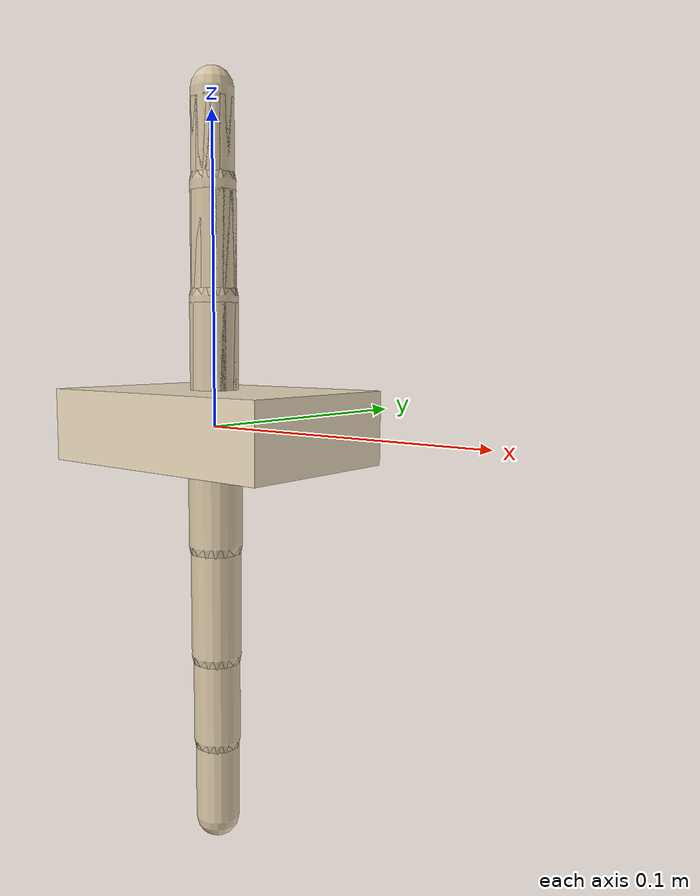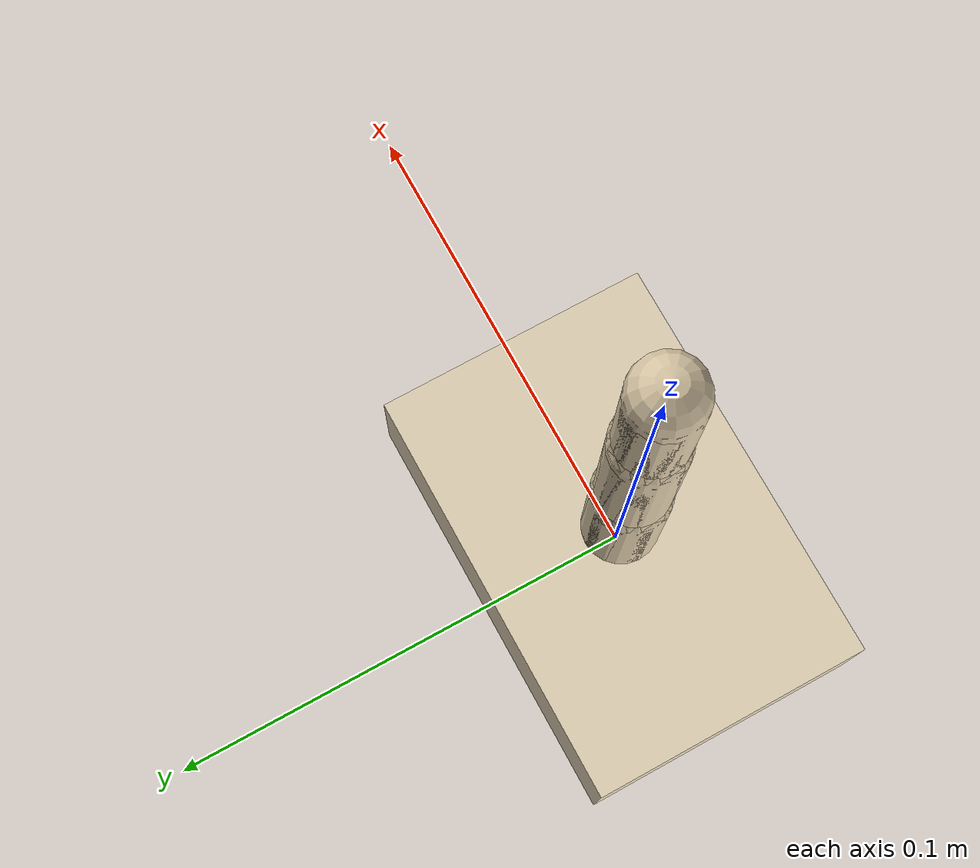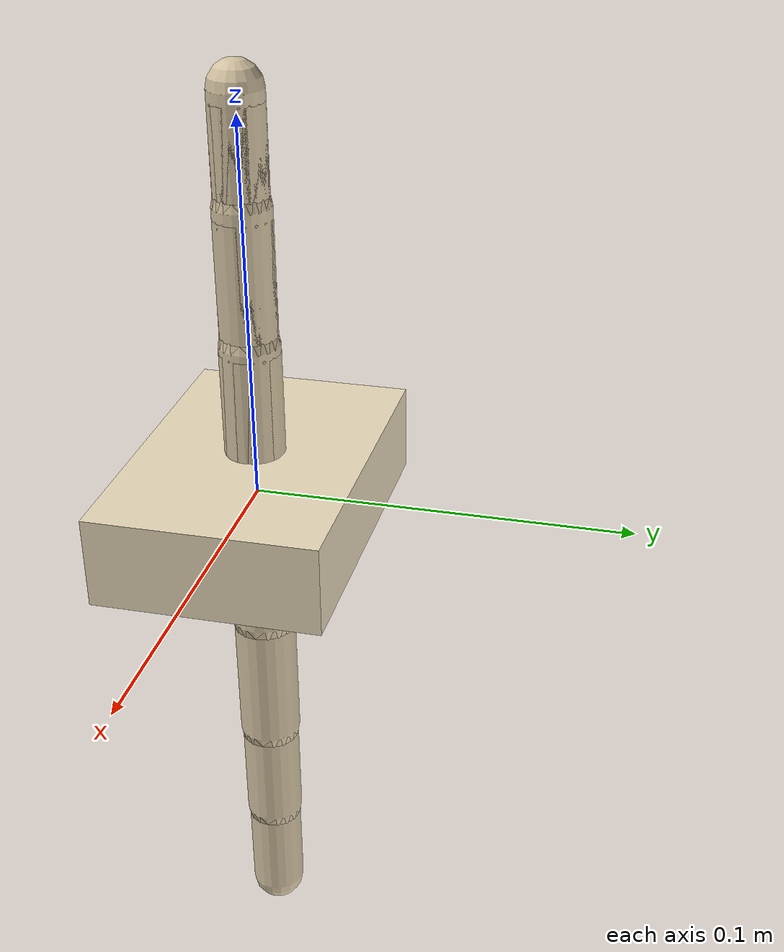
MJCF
<?xml version='1.0' encoding='utf-8'?>
<mujoco model="shadow_hand_lite">
  <compiler angle="radian" autolimits="true" meshdir="meshes/shadow_hand" discardvisual="false" />
  <option timestep="0.002" integrator="implicitfast" iterations="50" solver="Newton" />
  <default>
    <joint damping="0.3" armature="0.005" limited="true" />
    <geom condim="6" friction="1.5 0.05 0.02" rgba="0.85 0.78 0.65 1" />
    <default class="shadow_finger">
      <joint range="-1.57 1.57" damping="0.3" armature="0.005" />
      <position kp="40" ctrlrange="-1.57 1.57" />
      <geom condim="6" friction="1.5 0.05 0.02" rgba="0.85 0.78 0.65 1" />
    </default>
    <default class="tactile_sensor">
      <site group="3" rgba="0.1 0.9 0.3 0.4" size="0.006 0.006 0.006" />
    </default>
  </default>
  <worldbody>
    <body name="palm" pos="0 0 0" euler="0 0 0">
      <geom name="palm_geom" type="box" size="0.045 0.030 0.012" pos="0 0 0" rgba="0.92 0.86 0.74 1" class="shadow_finger" />
      <site name="tactile_palm" class="tactile_sensor" pos="0 0.025 0.012" size="0.020 0.020 0.002" type="box" />
      <inertial pos="0 0 0" mass="0.35" diaginertia="0.001 0.002 0.0025" />
      <body name="link_TH1" pos="0 0 0" euler="0 0 0">
        <joint name="A_THJ1" type="hinge" axis="1 0 0" class="shadow_finger" range="-1.57 1.57" damping="0.3" armature="0.005" />
        <geom name="geom_link_TH1" type="capsule" fromto="0 0 0 0 0 -0.0400" size="0.0090" class="shadow_finger" />
        <geom name="knuckle_link_TH1" type="sphere" size="0.0095" pos="0 0 0" class="shadow_finger" />
        <body name="link_TH2" pos="0 0 -0.040" euler="0 0 0">
          <joint name="A_THJ2" type="hinge" axis="0 1 0" class="shadow_finger" range="-1.57 1.57" damping="0.3" armature="0.005" />
          <geom name="geom_link_TH2" type="capsule" fromto="0 0 0 0 0 -0.0380" size="0.0085" class="shadow_finger" />
          <geom name="knuckle_link_TH2" type="sphere" size="0.0089" pos="0 0 0" class="shadow_finger" />
          <body name="link_TH3" pos="0 0 -0.038" euler="0 0 0">
            <joint name="A_THJ3" type="hinge" axis="0 1 0" class="shadow_finger" range="-1.57 1.57" damping="0.3" armature="0.005" />
            <geom name="geom_link_TH3" type="capsule" fromto="0 0 0 0 0 -0.0300" size="0.0080" class="shadow_finger" />
            <geom name="knuckle_link_TH3" type="sphere" size="0.0084" pos="0 0 0" class="shadow_finger" />
            <body name="link_TH4" pos="0 0 -0.030" euler="0 0 0">
              <joint name="A_THJ4" type="hinge" axis="0 1 0" class="shadow_finger" range="-1.57 1.57" damping="0.3" armature="0.005" />
              <geom name="geom_link_TH4" type="capsule" fromto="0 0 0 0 0 -0.0280" size="0.0075" class="shadow_finger" />
              <geom name="knuckle_link_TH4" type="sphere" size="0.0079" pos="0 0 0" class="shadow_finger" />
              <site name="tactile_TH" class="tactile_sensor" pos="0 0 -0.026" size="0.008 0.008 0.004" type="box" />
            </body>
          </body>
        </body>
      </body>
      <body name="link_IF1" pos="0 0 0" euler="0 0 0">
        <joint name="A_IFJ1" type="hinge" axis="1 0 0" class="shadow_finger" range="-1.57 1.57" damping="0.3" armature="0.005" />
        <geom name="geom_link_IF1" type="capsule" fromto="0 0 0 0 0 0.0400" size="0.0080" class="shadow_finger" />
        <geom name="knuckle_link_IF1" type="sphere" size="0.0084" pos="0 0 0" class="shadow_finger" />
        <body name="link_IF2" pos="0 0 0.040" euler="0 0 0">
          <joint name="A_IFJ2" type="hinge" axis="0 1 0" class="shadow_finger" range="-1.57 1.57" damping="0.3" armature="0.005" />
          <geom name="geom_link_IF2" type="capsule" fromto="0 0 0 0 0 0.0350" size="0.0075" class="shadow_finger" />
          <geom name="knuckle_link_IF2" type="sphere" size="0.0079" pos="0 0 0" class="shadow_finger" />
          <body name="link_IF3" pos="0 0 0.035" euler="0 0 0">
            <joint name="A_IFJ3" type="hinge" axis="0 1 0" class="shadow_finger" range="-1.57 1.57" damping="0.3" armature="0.005" />
            <geom name="geom_link_IF3" type="capsule" fromto="0 0 0 0 0 0.0280" size="0.0070" class="shadow_finger" />
            <geom name="knuckle_link_IF3" type="sphere" size="0.0074" pos="0 0 0" class="shadow_finger" />
            <site name="tactile_IF" class="tactile_sensor" pos="0 0 0.026" size="0.008 0.008 0.004" type="box" />
          </body>
        </body>
      </body>
      <body name="link_MF1" pos="0 0 0" euler="0 0 0">
        <joint name="A_MFJ1" type="hinge" axis="1 0 0" class="shadow_finger" range="-1.57 1.57" damping="0.3" armature="0.005" />
        <geom name="geom_link_MF1" type="capsule" fromto="0 0 0 0 0 0.0420" size="0.0080" class="shadow_finger" />
        <geom name="knuckle_link_MF1" type="sphere" size="0.0084" pos="0 0 0" class="shadow_finger" />
        <body name="link_MF2" pos="0 0 0.042" euler="0 0 0">
          <joint name="A_MFJ2" type="hinge" axis="0 1 0" class="shadow_finger" range="-1.57 1.57" damping="0.3" armature="0.005" />
          <geom name="geom_link_MF2" type="capsule" fromto="0 0 0 0 0 0.0360" size="0.0075" class="shadow_finger" />
          <geom name="knuckle_link_MF2" type="sphere" size="0.0079" pos="0 0 0" class="shadow_finger" />
          <body name="link_MF3" pos="0 0 0.036" euler="0 0 0">
            <joint name="A_MFJ3" type="hinge" axis="0 1 0" class="shadow_finger" range="-1.57 1.57" damping="0.3" armature="0.005" />
            <geom name="geom_link_MF3" type="capsule" fromto="0 0 0 0 0 0.0280" size="0.0070" class="shadow_finger" />
            <geom name="knuckle_link_MF3" type="sphere" size="0.0074" pos="0 0 0" class="shadow_finger" />
            <site name="tactile_MF" class="tactile_sensor" pos="0 0 0.026" size="0.008 0.008 0.004" type="box" />
          </body>
        </body>
      </body>
      <body name="link_RF1" pos="0 0 0" euler="0 0 0">
        <joint name="A_RFJ1" type="hinge" axis="1 0 0" class="shadow_finger" range="-1.57 1.57" damping="0.3" armature="0.005" />
        <geom name="geom_link_RF1" type="capsule" fromto="0 0 0 0 0 0.0380" size="0.0075" class="shadow_finger" />
        <geom name="knuckle_link_RF1" type="sphere" size="0.0079" pos="0 0 0" class="shadow_finger" />
        <body name="link_RF2" pos="0 0 0.038" euler="0 0 0">
          <joint name="A_RFJ2" type="hinge" axis="0 1 0" class="shadow_finger" range="-1.57 1.57" damping="0.3" armature="0.005" />
          <geom name="geom_link_RF2" type="capsule" fromto="0 0 0 0 0 0.0320" size="0.0070" class="shadow_finger" />
          <geom name="knuckle_link_RF2" type="sphere" size="0.0074" pos="0 0 0" class="shadow_finger" />
          <body name="link_RF3" pos="0 0 0.032" euler="0 0 0">
            <joint name="A_RFJ3" type="hinge" axis="0 1 0" class="shadow_finger" range="-1.57 1.57" damping="0.3" armature="0.005" />
            <geom name="geom_link_RF3" type="capsule" fromto="0 0 0 0 0 0.0260" size="0.0065" class="shadow_finger" />
            <geom name="knuckle_link_RF3" type="sphere" size="0.0068" pos="0 0 0" class="shadow_finger" />
            <site name="tactile_RF" class="tactile_sensor" pos="0 0 0.024" size="0.008 0.008 0.004" type="box" />
          </body>
        </body>
      </body>
      <body name="link_LF1" pos="0 0 0" euler="0 0 0">
        <joint name="A_LFJ1" type="hinge" axis="1 0 0" class="shadow_finger" range="-1.57 1.57" damping="0.3" armature="0.005" />
        <geom name="geom_link_LF1" type="capsule" fromto="0 0 0 0 0 0.0340" size="0.0070" class="shadow_finger" />
        <geom name="knuckle_link_LF1" type="sphere" size="0.0074" pos="0 0 0" class="shadow_finger" />
        <body name="link_LF2" pos="0 0 0.034" euler="0 0 0">
          <joint name="A_LFJ2" type="hinge" axis="0 1 0" class="shadow_finger" range="-1.57 1.57" damping="0.3" armature="0.005" />
          <geom name="geom_link_LF2" type="capsule" fromto="0 0 0 0 0 0.0280" size="0.0065" class="shadow_finger" />
          <geom name="knuckle_link_LF2" type="sphere" size="0.0068" pos="0 0 0" class="shadow_finger" />
          <body name="link_LF3" pos="0 0 0.028" euler="0 0 0">
            <joint name="A_LFJ3" type="hinge" axis="0 1 0" class="shadow_finger" range="-1.57 1.57" damping="0.3" armature="0.005" />
            <geom name="geom_link_LF3" type="capsule" fromto="0 0 0 0 0 0.0240" size="0.0060" class="shadow_finger" />
            <geom name="knuckle_link_LF3" type="sphere" size="0.0063" pos="0 0 0" class="shadow_finger" />
            <site name="tactile_LF" class="tactile_sensor" pos="0 0 0.022" size="0.008 0.008 0.004" type="box" />
          </body>
        </body>
      </body>
    </body>
  </worldbody>
  <actuator>
    <position name="act_THJ1" joint="A_THJ1" class="shadow_finger" kp="40" ctrlrange="-1.57 1.57" forcerange="-3 3" />
    <position name="act_THJ2" joint="A_THJ2" class="shadow_finger" kp="40" ctrlrange="-1.57 1.57" forcerange="-3 3" />
    <position name="act_THJ3" joint="A_THJ3" class="shadow_finger" kp="40" ctrlrange="-1.57 1.57" forcerange="-3 3" />
    <position name="act_THJ4" joint="A_THJ4" class="shadow_finger" kp="40" ctrlrange="-1.57 1.57" forcerange="-3 3" />
    <position name="act_IFJ1" joint="A_IFJ1" class="shadow_finger" kp="40" ctrlrange="-1.57 1.57" forcerange="-3 3" />
    <position name="act_IFJ2" joint="A_IFJ2" class="shadow_finger" kp="40" ctrlrange="-1.57 1.57" forcerange="-3 3" />
    <position name="act_IFJ3" joint="A_IFJ3" class="shadow_finger" kp="40" ctrlrange="-1.57 1.57" forcerange="-3 3" />
    <position name="act_MFJ1" joint="A_MFJ1" class="shadow_finger" kp="40" ctrlrange="-1.57 1.57" forcerange="-3 3" />
    <position name="act_MFJ2" joint="A_MFJ2" class="shadow_finger" kp="40" ctrlrange="-1.57 1.57" forcerange="-3 3" />
    <position name="act_MFJ3" joint="A_MFJ3" class="shadow_finger" kp="40" ctrlrange="-1.57 1.57" forcerange="-3 3" />
    <position name="act_RFJ1" joint="A_RFJ1" class="shadow_finger" kp="40" ctrlrange="-1.57 1.57" forcerange="-3 3" />
    <position name="act_RFJ2" joint="A_RFJ2" class="shadow_finger" kp="40" ctrlrange="-1.57 1.57" forcerange="-3 3" />
    <position name="act_RFJ3" joint="A_RFJ3" class="shadow_finger" kp="40" ctrlrange="-1.57 1.57" forcerange="-3 3" />
    <position name="act_LFJ1" joint="A_LFJ1" class="shadow_finger" kp="40" ctrlrange="-1.57 1.57" forcerange="-3 3" />
    <position name="act_LFJ2" joint="A_LFJ2" class="shadow_finger" kp="40" ctrlrange="-1.57 1.57" forcerange="-3 3" />
    <position name="act_LFJ3" joint="A_LFJ3" class="shadow_finger" kp="40" ctrlrange="-1.57 1.57" forcerange="-3 3" />
  </actuator>
  <sensor>
    <touch name="s_tactile_TH" site="tactile_TH" />
    <touch name="s_tactile_IF" site="tactile_IF" />
    <touch name="s_tactile_MF" site="tactile_MF" />
    <touch name="s_tactile_RF" site="tactile_RF" />
    <touch name="s_tactile_LF" site="tactile_LF" />
    <touch name="s_tactile_palm" site="tactile_palm" />
  </sensor>
</mujoco>
